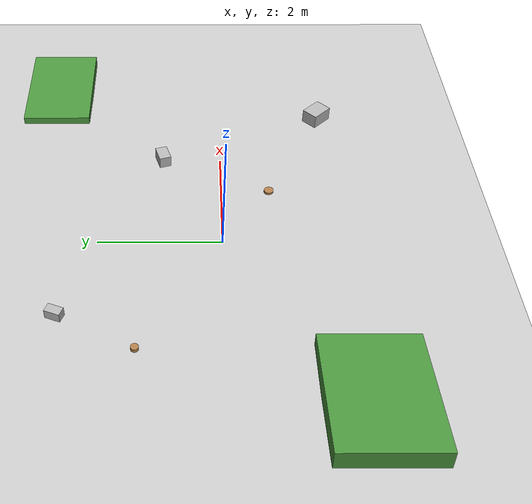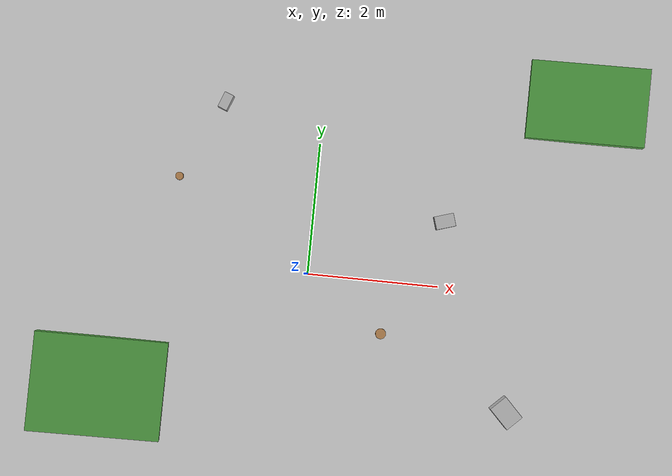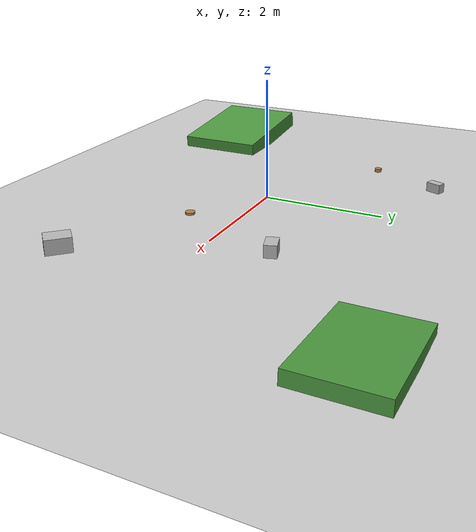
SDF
<?xml version="1.0" ?>
<sdf version="1.6">
  <world name="rough_terrain">

    <!-- Physics settings -->
    <physics name="1ms" type="ignore">
      <max_step_size>0.001</max_step_size>
      <real_time_factor>1.0</real_time_factor>
    </physics>

    <!-- Lighting -->
    <light type="directional" name="sun">
      <cast_shadows>true</cast_shadows>
      <pose>0 0 10 0 0 0</pose>
      <diffuse>0.8 0.8 0.8 1</diffuse>
      <specular>0.2 0.2 0.2 1</specular>
      <attenuation>
        <range>1000</range>
        <constant>0.9</constant>
        <linear>0.01</linear>
        <quadratic>0.001</quadratic>
      </attenuation>
      <direction>-0.5 0.1 -0.9</direction>
    </light>

    <!-- Base ground plane -->
    <model name="ground_plane">
      <static>true</static>
      <link name="link">
        <collision name="collision">
          <geometry>
            <plane>
              <normal>0 0 1</normal>
              <size>100 100</size>
            </plane>
          </geometry>
          <surface>
            <contact>
              <collide_bitmask>65535</collide_bitmask>
              <ode>
                <mu>0.9</mu>
                <mu2>0.9</mu2>
              </ode>
            </contact>
            <friction>
              <ode>
                <mu>0.9</mu>
                <mu2>0.9</mu2>
              </ode>
            </friction>
          </surface>
        </collision>
        <visual name="visual">
          <cast_shadows>false</cast_shadows>
          <geometry>
            <plane>
              <normal>0 0 1</normal>
              <size>100 100</size>
            </plane>
          </geometry>
          <material>
            <script>
              <uri>file://media/materials/scripts/gazebo.material</uri>
              <name>Gazebo/Dirt</name>
            </script>
          </material>
        </visual>
      </link>
    </model>

    <!-- Scattered rocks and obstacles -->
    <model name="rock_1">
      <static>true</static>
      <pose>2 1 0.1 0 0 0.3</pose>
      <link name="link">
        <collision name="collision">
          <geometry>
            <box>
              <size>0.3 0.2 0.2</size>
            </box>
          </geometry>
        </collision>
        <visual name="visual">
          <geometry>
            <box>
              <size>0.3 0.2 0.2</size>
            </box>
          </geometry>
          <material>
            <script>
              <uri>file://media/materials/scripts/gazebo.material</uri>
              <name>Gazebo/Rocky</name>
            </script>
          </material>
        </visual>
      </link>
    </model>

    <model name="rock_2">
      <static>true</static>
      <pose>-1.5 2.5 0.08 0 0 1.2</pose>
      <link name="link">
        <collision name="collision">
          <geometry>
            <box>
              <size>0.25 0.15 0.16</size>
            </box>
          </geometry>
        </collision>
        <visual name="visual">
          <geometry>
            <box>
              <size>0.25 0.15 0.16</size>
            </box>
          </geometry>
          <material>
            <script>
              <uri>file://media/materials/scripts/gazebo.material</uri>
              <name>Gazebo/Rocky</name>
            </script>
          </material>
        </visual>
      </link>
    </model>

    <model name="rock_3">
      <static>true</static>
      <pose>3.2 -1.8 0.12 0 0 -0.8</pose>
      <link name="link">
        <collision name="collision">
          <geometry>
            <box>
              <size>0.4 0.3 0.24</size>
            </box>
          </geometry>
        </collision>
        <visual name="visual">
          <geometry>
            <box>
              <size>0.4 0.3 0.24</size>
            </box>
          </geometry>
          <material>
            <script>
              <uri>file://media/materials/scripts/gazebo.material</uri>
              <name>Gazebo/Rocky</name>
            </script>
          </material>
        </visual>
      </link>
    </model>

    <!-- Small elevation changes -->
    <model name="hill_1">
      <static>true</static>
      <pose>-3 -2 0.15 0 0.1 0</pose>
      <link name="link">
        <collision name="collision">
          <geometry>
            <box>
              <size>2.0 1.5 0.3</size>
            </box>
          </geometry>
        </collision>
        <visual name="visual">
          <geometry>
            <box>
              <size>2.0 1.5 0.3</size>
            </box>
          </geometry>
          <material>
            <script>
              <uri>file://media/materials/scripts/gazebo.material</uri>
              <name>Gazebo/Grass</name>
            </script>
          </material>
        </visual>
      </link>
    </model>

    <model name="hill_2">
      <static>true</static>
      <pose>4 3 0.1 0 -0.08 0</pose>
      <link name="link">
        <collision name="collision">
          <geometry>
            <box>
              <size>1.8 1.2 0.2</size>
            </box>
          </geometry>
        </collision>
        <visual name="visual">
          <geometry>
            <box>
              <size>1.8 1.2 0.2</size>
            </box>
          </geometry>
          <material>
            <script>
              <uri>file://media/materials/scripts/gazebo.material</uri>
              <name>Gazebo/Grass</name>
            </script>
          </material>
        </visual>
      </link>
    </model>

    <!-- Scattered debris -->
    <model name="debris_1">
      <static>true</static>
      <pose>1.2 -0.8 0.02 0 0 0.5</pose>
      <link name="link">
        <collision name="collision">
          <geometry>
            <cylinder>
              <radius>0.08</radius>
              <length>0.04</length>
            </cylinder>
          </geometry>
        </collision>
        <visual name="visual">
          <geometry>
            <cylinder>
              <radius>0.08</radius>
              <length>0.04</length>
            </cylinder>
          </geometry>
          <material>
            <script>
              <uri>file://media/materials/scripts/gazebo.material</uri>
              <name>Gazebo/Wood</name>
            </script>
          </material>
        </visual>
      </link>
    </model>

    <model name="debris_2">
      <static>true</static>
      <pose>-2.1 1.3 0.03 0 0 -1.1</pose>
      <link name="link">
        <collision name="collision">
          <geometry>
            <cylinder>
              <radius>0.06</radius>
              <length>0.06</length>
            </cylinder>
          </geometry>
        </collision>
        <visual name="visual">
          <geometry>
            <cylinder>
              <radius>0.06</radius>
              <length>0.06</length>
            </cylinder>
          </geometry>
          <material>
            <script>
              <uri>file://media/materials/scripts/gazebo.material</uri>
              <name>Gazebo/Wood</name>
            </script>
          </material>
        </visual>
      </link>
    </model>

    <!-- Camera for observation -->
    <gui fullscreen='0'>
      <camera name='user_camera'>
        <pose>-6 -6 4 0 0.3 0.8</pose>
        <view_controller>orbit</view_controller>
        <projection_type>perspective</projection_type>
      </camera>
    </gui>

  </world>
</sdf>
